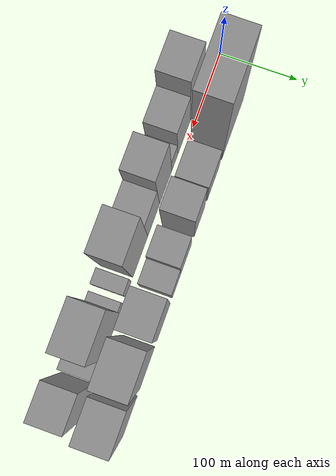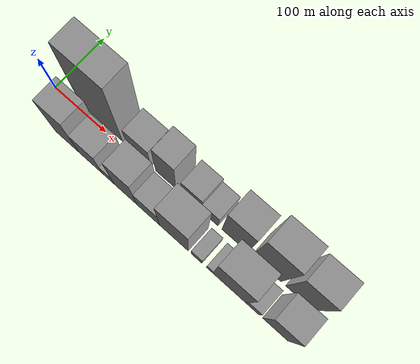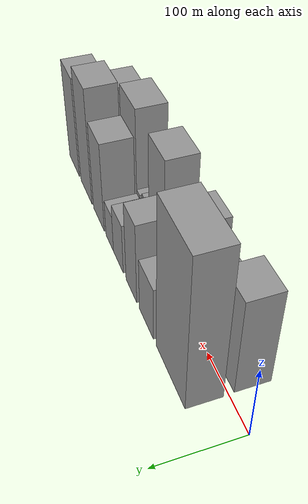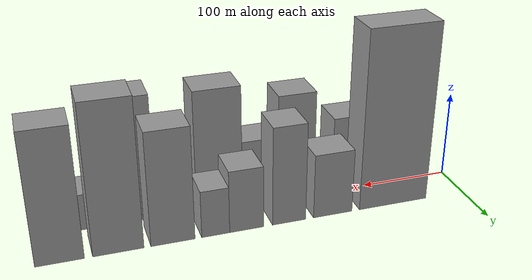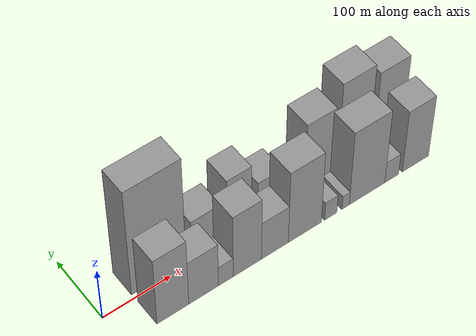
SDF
<sdf version="1.6">
 <world name="default">
  <scene>
   <sky><clouds><speed>12</speed></clouds></sky>
   <ambient>0.4 0.4 0.4 1</ambient>
   <background>0.7 0.7 0.7 1</background>
   <shadows>1</shadows>
  </scene>
  <gravity>0 0 -9.8066</gravity>
  <magnetic_field>6e-06 2.3e-05 -4.2e-05</magnetic_field>
  <physics default="0" name="default_physics" type="ode">
   <ode>
    <solver>
     <type>quick</type>
     <iters>10</iters>
     <sor>1.0</sor>
     <use_dynamic_moi_rescaling>0</use_dynamic_moi_rescaling>
    </solver>
    <constraints>
     <cfm>0</cfm>
     <erp>0.2</erp>
     <contact_max_correcting_vel>100</contact_max_correcting_vel>
     <contact_surface_layer>0.001</contact_surface_layer>
    </constraints>
   </ode>
   <max_step_size>0.004</max_step_size>
   <real_time_factor>1</real_time_factor>
   <real_time_update_rate>250</real_time_update_rate>
  </physics>
  <light name="sun" type="directional">
   <pose>0 0 10 0 0 0</pose>
   <diffuse>0.8 0.8 0.8 1</diffuse>
   <specular>0.2 0.2 0.2 1</specular>
   <attenuation>
    <range>1000</range>
    <constant>0.9</constant>
    <linear>0.01</linear>
    <quadratic>0.001</quadratic>
   </attenuation>
   <direction>-0.5 0.1 -0.9</direction>
  </light>
  <model name="building_1">
   <static>1</static>
   <pose>86.1554 26.0000 0 0.000000 0.000000 1.570796</pose>
   <link name="link">
    <pose>0 0 103.50 0 0 0</pose>
    <collision name="collision"><geometry><box><size>40.0000 80.3109 207.0000</size></box></geometry></collision>
    <visual name="visual">
     <cast_shadows>0</cast_shadows>
     <geometry><box><size>40.0000 80.3109 207.0000</size></box></geometry>
     <material>
      <script>
       <uri>model://grey_wall/materials/scripts</uri>
       <uri>model://grey_wall/materials/textures</uri>
       <name>vrc/grey_wall</name>
      </script>
     </material>
    </visual>
   </link>
  </model>
  <model name="building_2">
   <static>1</static>
   <pose>157.5540 26.0000 0 0.000000 0.000000 1.570796</pose>
   <link name="link">
    <pose>0 0 37.50 0 0 0</pose>
    <collision name="collision"><geometry><box><size>40.0000 44.4862 75.0000</size></box></geometry></collision>
    <visual name="visual">
     <cast_shadows>0</cast_shadows>
     <geometry><box><size>40.0000 44.4862 75.0000</size></box></geometry>
     <material>
      <script>
       <uri>model://grey_wall/materials/scripts</uri>
       <uri>model://grey_wall/materials/textures</uri>
       <name>vrc/grey_wall</name>
      </script>
     </material>
    </visual>
   </link>
  </model>
  <model name="building_3">
   <static>1</static>
   <pose>207.4365 26.0000 0 0.000000 0.000000 1.570796</pose>
   <link name="link">
    <pose>0 0 57.00 0 0 0</pose>
    <collision name="collision"><geometry><box><size>40.0000 37.2788 114.0000</size></box></geometry></collision>
    <visual name="visual">
     <cast_shadows>0</cast_shadows>
     <geometry><box><size>40.0000 37.2788 114.0000</size></box></geometry>
     <material>
      <script>
       <uri>model://grey_wall/materials/scripts</uri>
       <uri>model://grey_wall/materials/textures</uri>
       <name>vrc/grey_wall</name>
      </script>
     </material>
    </visual>
   </link>
  </model>
  <model name="building_4">
   <static>1</static>
   <pose>254.5693 26.0000 0 0.000000 0.000000 1.570796</pose>
   <link name="link">
    <pose>0 0 36.00 0 0 0</pose>
    <collision name="collision"><geometry><box><size>40.0000 36.9867 72.0000</size></box></geometry></collision>
    <visual name="visual">
     <cast_shadows>0</cast_shadows>
     <geometry><box><size>40.0000 36.9867 72.0000</size></box></geometry>
     <material>
      <script>
       <uri>model://grey_wall/materials/scripts</uri>
       <uri>model://grey_wall/materials/textures</uri>
       <name>vrc/grey_wall</name>
      </script>
     </material>
    </visual>
   </link>
  </model>
  <model name="building_5">
   <static>1</static>
   <pose>287.9815 26.0000 0 0.000000 0.000000 1.570796</pose>
   <link name="link">
    <pose>0 0 27.00 0 0 0</pose>
    <collision name="collision"><geometry><box><size>40.0000 29.8376 54.0000</size></box></geometry></collision>
    <visual name="visual">
     <cast_shadows>0</cast_shadows>
     <geometry><box><size>40.0000 29.8376 54.0000</size></box></geometry>
     <material>
      <script>
       <uri>model://grey_wall/materials/scripts</uri>
       <uri>model://grey_wall/materials/textures</uri>
       <name>vrc/grey_wall</name>
      </script>
     </material>
    </visual>
   </link>
  </model>
  <model name="building_6">
   <static>1</static>
   <pose>332.8033 26.0000 0 0.000000 0.000000 1.570796</pose>
   <link name="link">
    <pose>0 0 64.50 0 0 0</pose>
    <collision name="collision"><geometry><box><size>40.0000 45.8060 129.0000</size></box></geometry></collision>
    <visual name="visual">
     <cast_shadows>0</cast_shadows>
     <geometry><box><size>40.0000 45.8060 129.0000</size></box></geometry>
     <material>
      <script>
       <uri>model://grey_wall/materials/scripts</uri>
       <uri>model://grey_wall/materials/textures</uri>
       <name>vrc/grey_wall</name>
      </script>
     </material>
    </visual>
   </link>
  </model>
  <model name="building_7">
   <static>1</static>
   <pose>388.3900 26.0000 0 0.000000 0.000000 1.570796</pose>
   <link name="link">
    <pose>0 0 84.00 0 0 0</pose>
    <collision name="collision"><geometry><box><size>40.0000 51.3673 168.0000</size></box></geometry></collision>
    <visual name="visual">
     <cast_shadows>0</cast_shadows>
     <geometry><box><size>40.0000 51.3673 168.0000</size></box></geometry>
     <material>
      <script>
       <uri>model://grey_wall/materials/scripts</uri>
       <uri>model://grey_wall/materials/textures</uri>
       <name>vrc/grey_wall</name>
      </script>
     </material>
    </visual>
   </link>
  </model>
  <model name="building_8">
   <static>1</static>
   <pose>446.0508 26.0000 0 0.000000 0.000000 1.570796</pose>
   <link name="link">
    <pose>0 0 73.50 0 0 0</pose>
    <collision name="collision"><geometry><box><size>40.0000 47.9543 147.0000</size></box></geometry></collision>
    <visual name="visual">
     <cast_shadows>0</cast_shadows>
     <geometry><box><size>40.0000 47.9543 147.0000</size></box></geometry>
     <material>
      <script>
       <uri>model://grey_wall/materials/scripts</uri>
       <uri>model://grey_wall/materials/textures</uri>
       <name>vrc/grey_wall</name>
      </script>
     </material>
    </visual>
   </link>
  </model>
  <model name="building_9">
   <static>1</static>
   <pose>70.2439 -26.0000 0 0.000000 0.000000 1.570796</pose>
   <link name="link">
    <pose>0 0 66.00 0 0 0</pose>
    <collision name="collision"><geometry><box><size>40.0000 46.4878 132.0000</size></box></geometry></collision>
    <visual name="visual">
     <cast_shadows>0</cast_shadows>
     <geometry><box><size>40.0000 46.4878 132.0000</size></box></geometry>
     <material>
      <script>
       <uri>model://grey_wall/materials/scripts</uri>
       <uri>model://grey_wall/materials/textures</uri>
       <name>vrc/grey_wall</name>
      </script>
     </material>
    </visual>
   </link>
  </model>
  <model name="building_10">
   <static>1</static>
   <pose>115.5316 -26.0000 0 0.000000 0.000000 1.570796</pose>
   <link name="link">
    <pose>0 0 43.50 0 0 0</pose>
    <collision name="collision"><geometry><box><size>40.0000 44.0876 87.0000</size></box></geometry></collision>
    <visual name="visual">
     <cast_shadows>0</cast_shadows>
     <geometry><box><size>40.0000 44.0876 87.0000</size></box></geometry>
     <material>
      <script>
       <uri>model://grey_wall/materials/scripts</uri>
       <uri>model://grey_wall/materials/textures</uri>
       <name>vrc/grey_wall</name>
      </script>
     </material>
    </visual>
   </link>
  </model>
  <model name="building_11">
   <static>1</static>
   <pose>148.5703 -26.0000 0 0.000000 0.000000 1.570796</pose>
   <link name="link">
    <pose>0 0 19.50 0 0 0</pose>
    <collision name="collision"><geometry><box><size>40.0000 21.9899 39.0000</size></box></geometry></collision>
    <visual name="visual">
     <cast_shadows>0</cast_shadows>
     <geometry><box><size>40.0000 21.9899 39.0000</size></box></geometry>
     <material>
      <script>
       <uri>model://grey_wall/materials/scripts</uri>
       <uri>model://grey_wall/materials/textures</uri>
       <name>vrc/grey_wall</name>
      </script>
     </material>
    </visual>
   </link>
  </model>
  <model name="building_12">
   <static>1</static>
   <pose>181.0442 -26.0000 0 0.000000 0.000000 1.570796</pose>
   <link name="link">
    <pose>0 0 61.50 0 0 0</pose>
    <collision name="collision"><geometry><box><size>40.0000 42.9579 123.0000</size></box></geometry></collision>
    <visual name="visual">
     <cast_shadows>0</cast_shadows>
     <geometry><box><size>40.0000 42.9579 123.0000</size></box></geometry>
     <material>
      <script>
       <uri>model://grey_wall/materials/scripts</uri>
       <uri>model://grey_wall/materials/textures</uri>
       <name>vrc/grey_wall</name>
      </script>
     </material>
    </visual>
   </link>
  </model>
  <model name="building_13">
   <static>1</static>
   <pose>223.2081 -26.0000 0 0.000000 0.000000 1.570796</pose>
   <link name="link">
    <pose>0 0 37.50 0 0 0</pose>
    <collision name="collision"><geometry><box><size>40.0000 41.3700 75.0000</size></box></geometry></collision>
    <visual name="visual">
     <cast_shadows>0</cast_shadows>
     <geometry><box><size>40.0000 41.3700 75.0000</size></box></geometry>
     <material>
      <script>
       <uri>model://grey_wall/materials/scripts</uri>
       <uri>model://grey_wall/materials/textures</uri>
       <name>vrc/grey_wall</name>
      </script>
     </material>
    </visual>
   </link>
  </model>
  <model name="building_14">
   <static>1</static>
   <pose>269.7874 -26.0000 0 0.000000 0.000000 1.570796</pose>
   <link name="link">
    <pose>0 0 70.50 0 0 0</pose>
    <collision name="collision"><geometry><box><size>40.0000 51.7885 141.0000</size></box></geometry></collision>
    <visual name="visual">
     <cast_shadows>0</cast_shadows>
     <geometry><box><size>40.0000 51.7885 141.0000</size></box></geometry>
     <material>
      <script>
       <uri>model://grey_wall/materials/scripts</uri>
       <uri>model://grey_wall/materials/textures</uri>
       <name>vrc/grey_wall</name>
      </script>
     </material>
    </visual>
   </link>
  </model>
  <model name="building_15">
   <static>1</static>
   <pose>310.4677 -26.0000 0 0.000000 0.000000 1.570796</pose>
   <link name="link">
    <pose>0 0 18.00 0 0 0</pose>
    <collision name="collision"><geometry><box><size>40.0000 19.5721 36.0000</size></box></geometry></collision>
    <visual name="visual">
     <cast_shadows>0</cast_shadows>
     <geometry><box><size>40.0000 19.5721 36.0000</size></box></geometry>
     <material>
      <script>
       <uri>model://grey_wall/materials/scripts</uri>
       <uri>model://grey_wall/materials/textures</uri>
       <name>vrc/grey_wall</name>
      </script>
     </material>
    </visual>
   </link>
  </model>
  <model name="building_16">
   <static>1</static>
   <pose>334.1356 -26.0000 0 0.000000 0.000000 1.570796</pose>
   <link name="link">
    <pose>0 0 13.50 0 0 0</pose>
    <collision name="collision"><geometry><box><size>40.0000 11.7637 27.0000</size></box></geometry></collision>
    <visual name="visual">
     <cast_shadows>0</cast_shadows>
     <geometry><box><size>40.0000 11.7637 27.0000</size></box></geometry>
     <material>
      <script>
       <uri>model://grey_wall/materials/scripts</uri>
       <uri>model://grey_wall/materials/textures</uri>
       <name>vrc/grey_wall</name>
      </script>
     </material>
    </visual>
   </link>
  </model>
  <model name="building_17">
   <static>1</static>
   <pose>368.7815 -26.0000 0 0.000000 0.000000 1.570796</pose>
   <link name="link">
    <pose>0 0 72.00 0 0 0</pose>
    <collision name="collision"><geometry><box><size>40.0000 57.5281 144.0000</size></box></geometry></collision>
    <visual name="visual">
     <cast_shadows>0</cast_shadows>
     <geometry><box><size>40.0000 57.5281 144.0000</size></box></geometry>
     <material>
      <script>
       <uri>model://grey_wall/materials/scripts</uri>
       <uri>model://grey_wall/materials/textures</uri>
       <name>vrc/grey_wall</name>
      </script>
     </material>
    </visual>
   </link>
  </model>
  <model name="building_18">
   <static>1</static>
   <pose>408.9415 -26.0000 0 0.000000 0.000000 1.570796</pose>
   <link name="link">
    <pose>0 0 21.00 0 0 0</pose>
    <collision name="collision"><geometry><box><size>40.0000 22.7921 42.0000</size></box></geometry></collision>
    <visual name="visual">
     <cast_shadows>0</cast_shadows>
     <geometry><box><size>40.0000 22.7921 42.0000</size></box></geometry>
     <material>
      <script>
       <uri>model://grey_wall/materials/scripts</uri>
       <uri>model://grey_wall/materials/textures</uri>
       <name>vrc/grey_wall</name>
      </script>
     </material>
    </visual>
   </link>
  </model>
  <model name="building_19">
   <static>1</static>
   <pose>448.0431 -26.0000 0 0.000000 0.000000 1.570796</pose>
   <link name="link">
    <pose>0 0 60.00 0 0 0</pose>
    <collision name="collision"><geometry><box><size>40.0000 43.4111 120.0000</size></box></geometry></collision>
    <visual name="visual">
     <cast_shadows>0</cast_shadows>
     <geometry><box><size>40.0000 43.4111 120.0000</size></box></geometry>
     <material>
      <script>
       <uri>model://grey_wall/materials/scripts</uri>
       <uri>model://grey_wall/materials/textures</uri>
       <name>vrc/grey_wall</name>
      </script>
     </material>
    </visual>
   </link>
  </model>
 </world>
</sdf>
